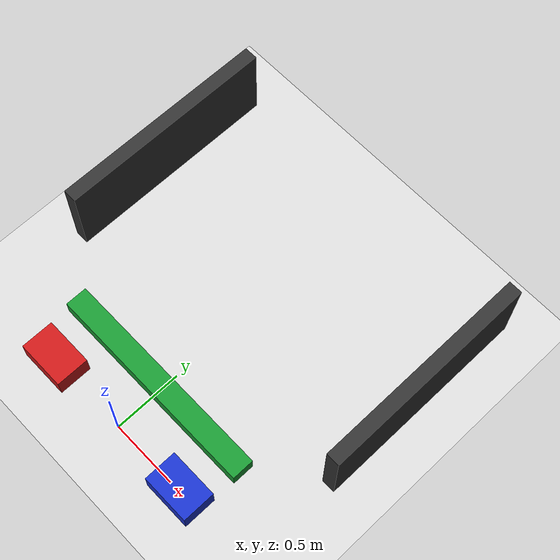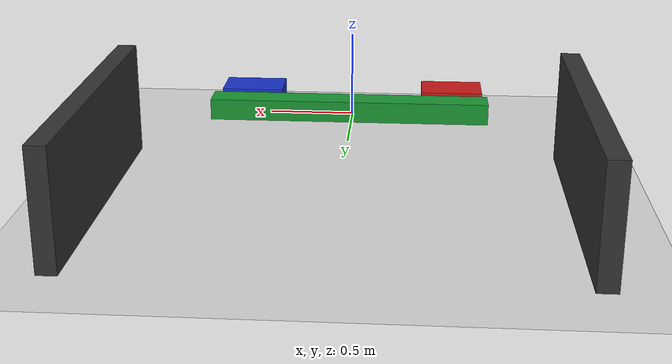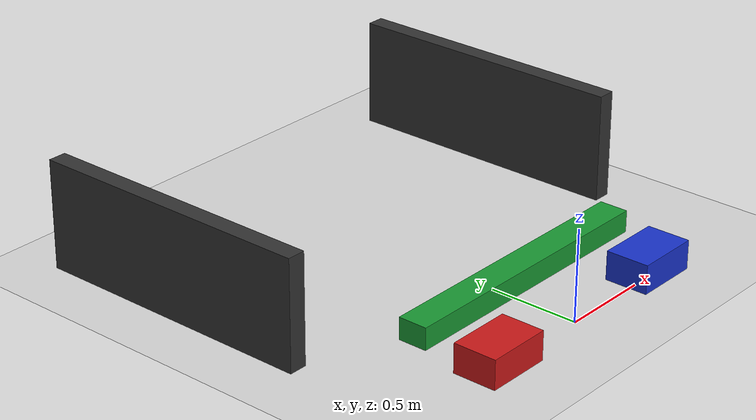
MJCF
<mujoco model="two_robot_carry_minimal">
  <compiler angle="radian" coordinate="local"/>
  <option timestep="0.002" gravity="0 0 -9.81"/>

  <asset>
    <texture name="grid" type="2d" builtin="checker" rgb1=".8 .8 .8" rgb2=".9 .9 .9" width="300" height="300"/>
    <material name="grid" texture="grid" texrepeat="8 8" reflectance="0.1"/>
    <material name="red" rgba="0.8 0.1 0.1 1"/>
    <material name="blue" rgba="0.1 0.2 0.8 1"/>
    <material name="green" rgba="0.1 0.6 0.2 1"/>
  </asset>

  <worldbody>
    <light pos="0 0 4"/>
    <geom name="floor" type="plane" size="5 5 0.1" material="grid"/>

    <camera name="fixed" pos="0 -4 3" xyaxes="1 0 0 0 0.6 0.8"/>

    <body name="robot_a" pos="-0.6 0 0.1">
      <joint name="robot_a_x" type="slide" axis="1 0 0" damping="5"/>
      <joint name="robot_a_y" type="slide" axis="0 1 0" damping="5"/>
      <joint name="robot_a_yaw" type="hinge" axis="0 0 1" damping="1"/>
      <geom name="robot_a_geom" type="box" size="0.18 0.12 0.08" material="red" mass="5"/>
    </body>

    <body name="robot_b" pos="0.6 0 0.1">
      <joint name="robot_b_x" type="slide" axis="1 0 0" damping="5"/>
      <joint name="robot_b_y" type="slide" axis="0 1 0" damping="5"/>
      <joint name="robot_b_yaw" type="hinge" axis="0 0 1" damping="1"/>
      <geom name="robot_b_geom" type="box" size="0.18 0.12 0.08" material="blue" mass="5"/>
    </body>

    <body name="carry_object" pos="0 0.35 0.15">
      <freejoint name="object_free"/>
      <geom name="carry_object_geom" type="box" size="0.8 0.08 0.06" material="green" mass="1"/>
    </body>

    <geom name="wall_left" type="box" pos="-1.2 1.5 0.3" size="0.05 0.8 0.3" rgba="0.2 0.2 0.2 1"/>
    <geom name="wall_right" type="box" pos="1.2 1.5 0.3" size="0.05 0.8 0.3" rgba="0.2 0.2 0.2 1"/>
  </worldbody>

  <actuator>
    <motor name="robot_a_x_motor" joint="robot_a_x" gear="50" ctrlrange="-1 1"/>
    <motor name="robot_a_y_motor" joint="robot_a_y" gear="50" ctrlrange="-1 1"/>
    <motor name="robot_a_yaw_motor" joint="robot_a_yaw" gear="20" ctrlrange="-1 1"/>

    <motor name="robot_b_x_motor" joint="robot_b_x" gear="50" ctrlrange="-1 1"/>
    <motor name="robot_b_y_motor" joint="robot_b_y" gear="50" ctrlrange="-1 1"/>
    <motor name="robot_b_yaw_motor" joint="robot_b_yaw" gear="20" ctrlrange="-1 1"/>
  </actuator>
</mujoco>
